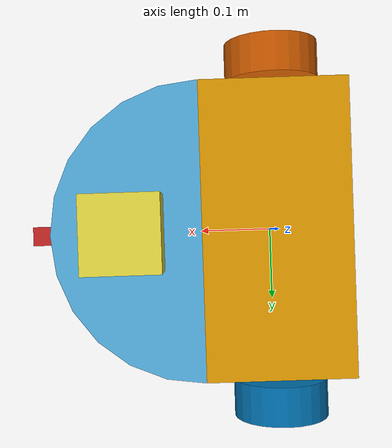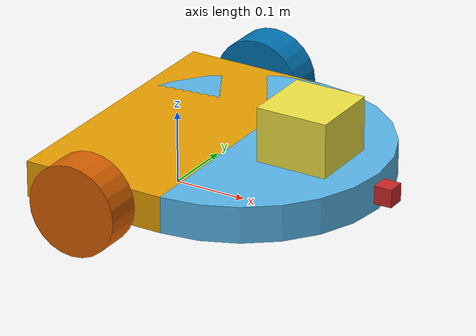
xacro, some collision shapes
<?xml version='1.0'?>

<robot name="my_robot" xmlns:xacro="http://www.ros.org/wiki/xacro">
    <xacro:include filename="$(find udacity_bot)/urdf/my_robot_xacro_defs.xacro" />
    <xacro:include filename="$(find udacity_bot)/urdf/my_robot_static_links.xacro" />
    <xacro:include filename="$(find udacity_bot)/urdf/my_robot_wheels.xacro" />
    <xacro:include filename="$(find udacity_bot)/urdf/my_robot_gazebo_tags.xacro" />
</robot>

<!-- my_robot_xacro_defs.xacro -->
<robot xmlns:xacro="http://www.ros.org/wiki/xacro">

<xacro:property name="bodyLen" value="0.2"/>
<xacro:property name="bodyWidth" value="0.4"/>
<xacro:property name="bodyHeight" value="0.05"/>
<xacro:property name="bodyRadius" value="0.2"/>

<xacro:property name="M_PI" value="3.1415926535897931" />

<!-- define the drive-wheel dimensions-->
<xacro:property name="tireDiam" value="0.125" />
<xacro:property name="tireRad" value="${tireDiam/2.0}" />
<xacro:property name="tireWidth" value="0.05" />
<xacro:property name="track" value="${bodyWidth + tireWidth}" />

<!-- placement of main body relative to base link frame -->
<xacro:property name="bodyOX" value="0" />
<xacro:property name="bodyOY" value="0" />
<xacro:property name="bodyOZ" value="${tireRad}" />

<!-- Caster wheel -->
<xacro:property name="casterRad" value="${(tireDiam - bodyHeight)/2.0 + 0.0125}"/>

<!-- Camera -->
<xacro:property name="camera_link" value="0.025" /> <!-- Size of square 'camera' box -->

</robot>

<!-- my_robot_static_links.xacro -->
<robot
     xmlns:xacro="http://www.ros.org/wiki/xacro" name="static_links">
    <link name="base_link">
        <visual>
            <geometry>
                <box size="${bodyLen} ${bodyWidth} ${bodyHeight}"/>
            </geometry>
            <origin xyz="${bodyOX} ${bodyOY} ${bodyOZ}" rpy="0 0 0"/>
        </visual>
        <collision>
            <geometry>
                <box size="${bodyLen} ${bodyWidth} ${bodyHeight}"/>
            </geometry>
            <origin xyz="${bodyOX} ${bodyOY} ${bodyOZ}" rpy="0 0 0"/>
        </collision>
        <inertial>
            <!--assign almost all the mass to the main body box; set m= 100kg; treat I as approx m*r^2 -->
            <mass value="100" />
            <inertia ixx="10" ixy="0" ixz="0"
              iyy="10" iyz="0"
              izz="10" />
        </inertial>
    <collision name='caster_collision'>
      <origin xyz="${bodyRadius} 0 ${casterRad}" rpy=" 0 0 0"/>
      <geometry>
        <sphere radius="${casterRad}"/>
      </geometry>
    </collision>

    <visual name='caster_visual'>
      <origin xyz="${bodyRadius} 0 ${casterRad}" rpy=" 0 0 0"/>
      <geometry>
          <sphere radius="${casterRad}"/>
      </geometry>
    </visual>
    </link>
    <link name="base_link_1">
        <visual>
            <geometry>
                <cylinder radius="${bodyRadius}" length="${bodyHeight}"/>
            </geometry>
            <origin xyz="${bodyLen/2.0} 0 0" rpy="0 0 0"/>
        </visual>
        <collision>
            <geometry>
                <cylinder radius="${bodyRadius}" length="${bodyHeight}"/>
            </geometry>
            <origin xyz="${bodyLen/2.0} 0 0" rpy="0 0 0"/>
        </collision>
        <inertial>
            <!--assign almost all the mass to the main body box; set m= 100kg; treat I as approx m*r^2 -->
            <mass value="100" />
            <inertia ixx="10" ixy="0" ixz="0"
              iyy="10" iyz="0"
              izz="10" />
        </inertial>
    </link>
    <joint name="base_to_base_1" type="fixed">
        <parent link="base_link"/>
        <child link="base_link_1"/>
        <origin xyz="${bodyOX} ${bodyOY} ${bodyOZ}" rpy="0 0 0"/>
    </joint>

  <!-- Camera Joint -->
  <joint name="camera_joint" type="fixed">
    <axis xyz="0 1 0" />
    <origin xyz="${bodyLen + bodyLen/2.0} 0 ${tireRad}" rpy="0 0 0"/>
    <parent link="base_link"/>
    <child link="camera_link"/>
  </joint>

  <!-- Camera -->
  <link name="camera_link">
    <collision>
      <origin xyz="${camera_link/2.0} 0 0" rpy="0 0 0"/>
      <geometry>
    <box size="${camera_link} ${camera_link} ${camera_link}"/>
      </geometry>
    </collision>

    <visual>
      <origin xyz="${camera_link/2.0} 0 0" rpy="0 0 0"/>
      <geometry>
    <box size="${camera_link} ${camera_link} ${camera_link}"/>
      </geometry>
      <material name="red"/>
    </visual>

    <inertial>
      <mass value="1e-5" />
      <origin xyz="0 0 0" rpy="0 0 0"/>
      <inertia ixx="1e-6" ixy="0" ixz="0" iyy="1e-6" iyz="0" izz="1e-6" />
    </inertial>
  </link>
  <!-- Hokuyo joint -->
  <joint name="hokuyo_joint" type="fixed">
    <axis xyz="0 1 0" />
    <origin xyz="${bodyRadius} 0 ${bodyHeight + tireRad}" rpy="0 0 0"/>
    <parent link="base_link"/>
    <child link="hokuyo_link"/>
  </joint>

  <!-- Hokuyo Laser -->
  <link name="hokuyo_link">
    <collision>
      <origin xyz="0 0 0" rpy="0 0 0"/>
      <geometry>
    <box size="0.1 0.1 0.1"/>
      </geometry>
    </collision>

    <visual>
      <origin xyz="0 0 0" rpy="0 0 0"/>
      <geometry>
        <mesh filename="package://udacity_bot/meshes/hokuyo.dae"/>
      </geometry>
    </visual>

    <inertial>
      <mass value="1e-5" />
      <origin xyz="0 0 0" rpy="0 0 0"/>
      <inertia ixx="1e-6" ixy="0" ixz="0" iyy="1e-6" iyz="0" izz="1e-6" />
    </inertial>
  </link>
</robot>

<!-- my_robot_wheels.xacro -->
<robot
     xmlns:xacro="http://www.ros.org/wiki/xacro" name="wheels">

    <xacro:macro name="wheel" params="prefix reflect">
        <link name="${prefix}_wheel">
            <visual>
                <geometry>
                    <cylinder radius="${tireRad}" length="${tireWidth}"/>
                </geometry>
            </visual>
            <collision>
                <geometry>
                    <cylinder radius="${tireRad}" length="${tireWidth}"/>
                </geometry>
            </collision>
            <inertial>
            <!--assign inertial properties to drive wheels -->
            <mass value="1" />
            <inertia ixx="0.1" ixy="0" ixz="0"
              iyy="0.1" iyz="0"
              izz="0.1" />
        </inertial>
        </link>
        <joint name="${prefix}_wheel_joint" type="continuous">
            <axis xyz="0 0 1"/>
            <parent link="base_link"/>
            <child link="${prefix}_wheel"/>
            <origin xyz="0 ${reflect*track/2} ${tireRad}" rpy="0 ${M_PI/2} ${M_PI/2}"/>
            <limit effort="100" velocity="15" />
            <joint_properties damping="0.0" friction="0.0" />
        </joint>
    </xacro:macro>
    <xacro:wheel prefix="left" reflect="1"/>
    <xacro:wheel prefix="right" reflect="-1"/>
</robot>
